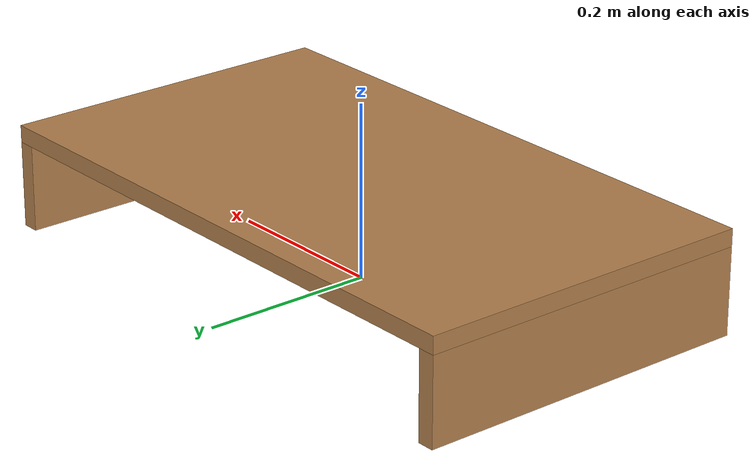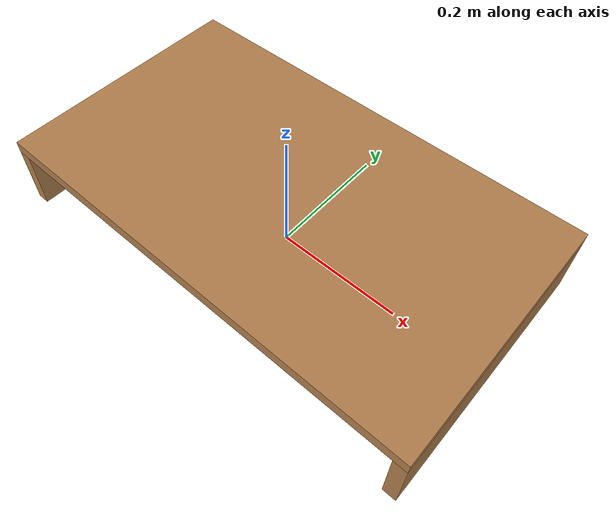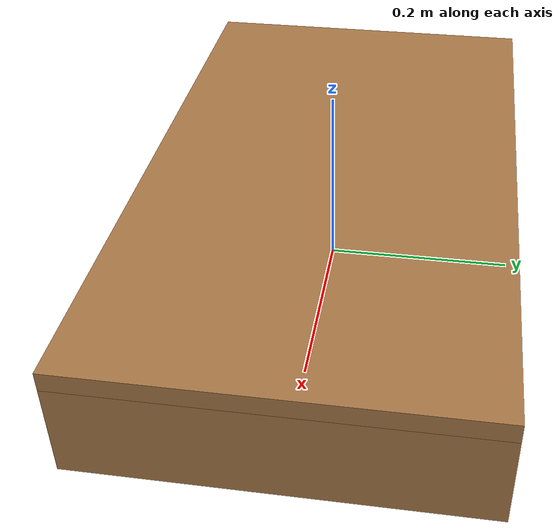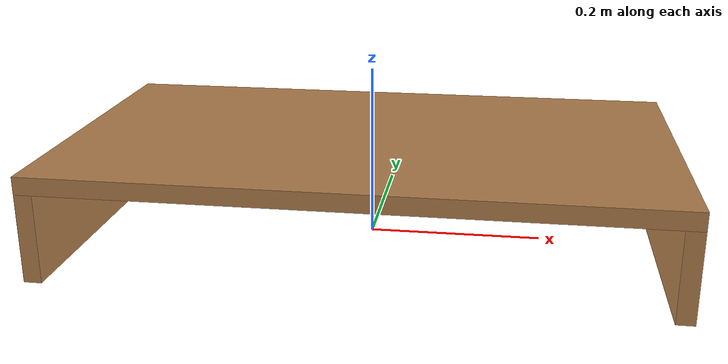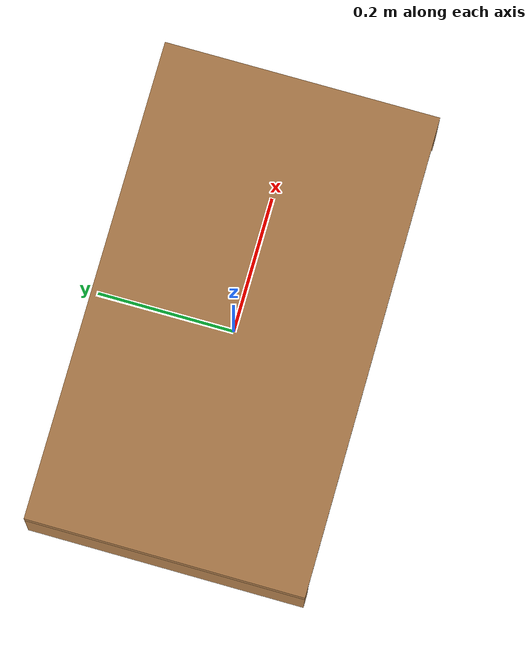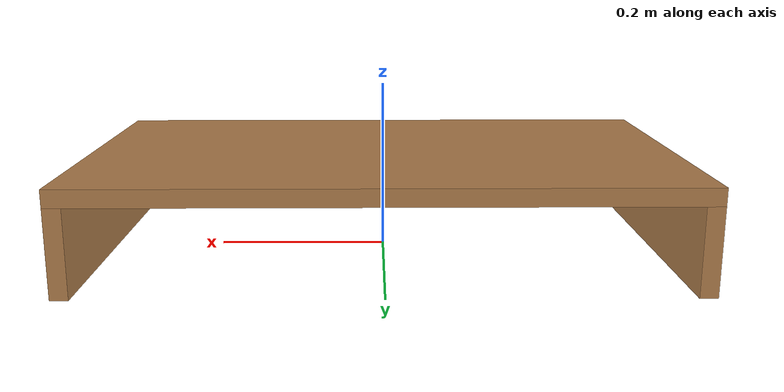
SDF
<?xml version="1.0" ?>

<sdf version="1.5">
  <model name="vte_shelf">
    <static>true</static>
    <link name="vte_shelf_root_link">
      <collision name="vte_shelf_surface_collision">
	<pose>0 0 0.11 0 0 0</pose>
	<geometry>
          <box>
            <size>0.7 0.4 0.02</size>
          </box>
	</geometry>
	<surface>
          <friction>
            <ode>
              <mu>0.4</mu>
              <mu2>0.4</mu2>
            </ode>
          </friction>
	</surface>
      </collision>
      <visual name="vte_shelf_surface_visual">
	<pose>0 0 0.11 0 0 0</pose>
	<geometry>
          <box>
            <size>0.7 0.4 0.02</size>
          </box>
	</geometry>
	<material>
          <script>
            <uri>file://media/materials/scripts/gazebo.material</uri>
            <name>Gazebo/Wood</name>
          </script>
	</material>
      </visual>
      <visual name="left_support_visual">
	<pose>-0.33999999999999997 0.0 0.05 0 0 0</pose>
	<geometry>
          <box>
            <size>0.02 0.4 0.1</size>
          </box>
	</geometry>
	<material>
          <script>
            <uri>file://media/materials/scripts/gazebo.material</uri>
            <name>Gazebo/Wood</name>
          </script>
	</material>
      </visual>
      <visual name="right_support_visual">
	<pose>0.33999999999999997 0.0 0.05 0 0 0</pose>
	<geometry>
          <box>
            <size>0.02 0.4 0.1</size>
          </box>
	</geometry>
	<material>
          <script>
            <uri>file://media/materials/scripts/gazebo.material</uri>
            <name>Gazebo/Wood</name>
          </script>
	</material>
      </visual>
    </link>
  </model>
</sdf>
